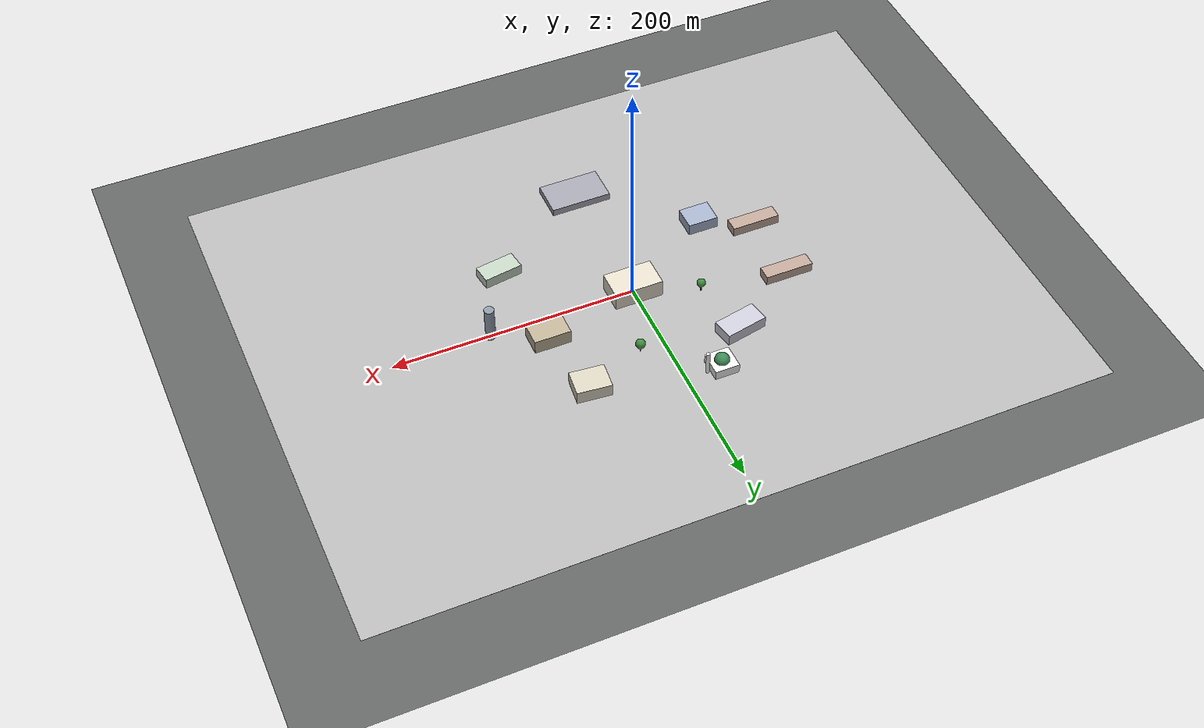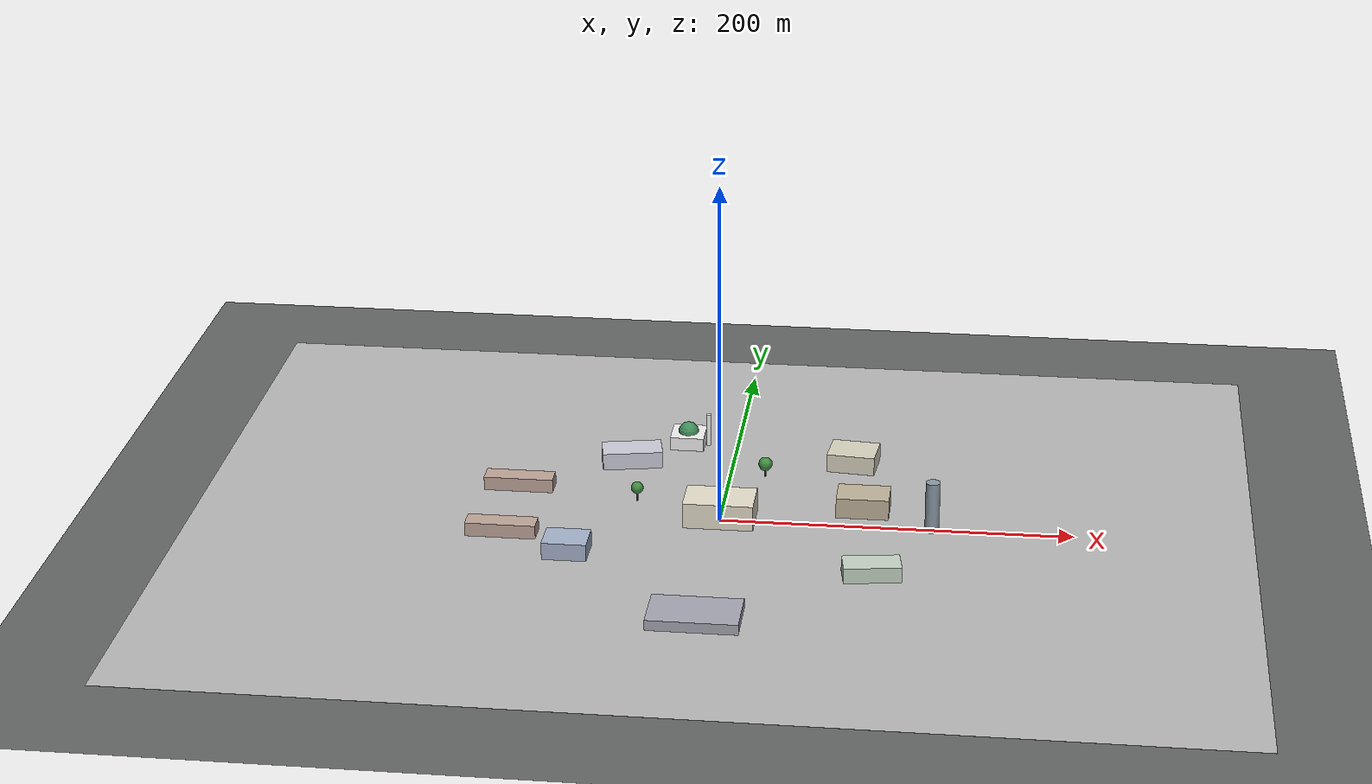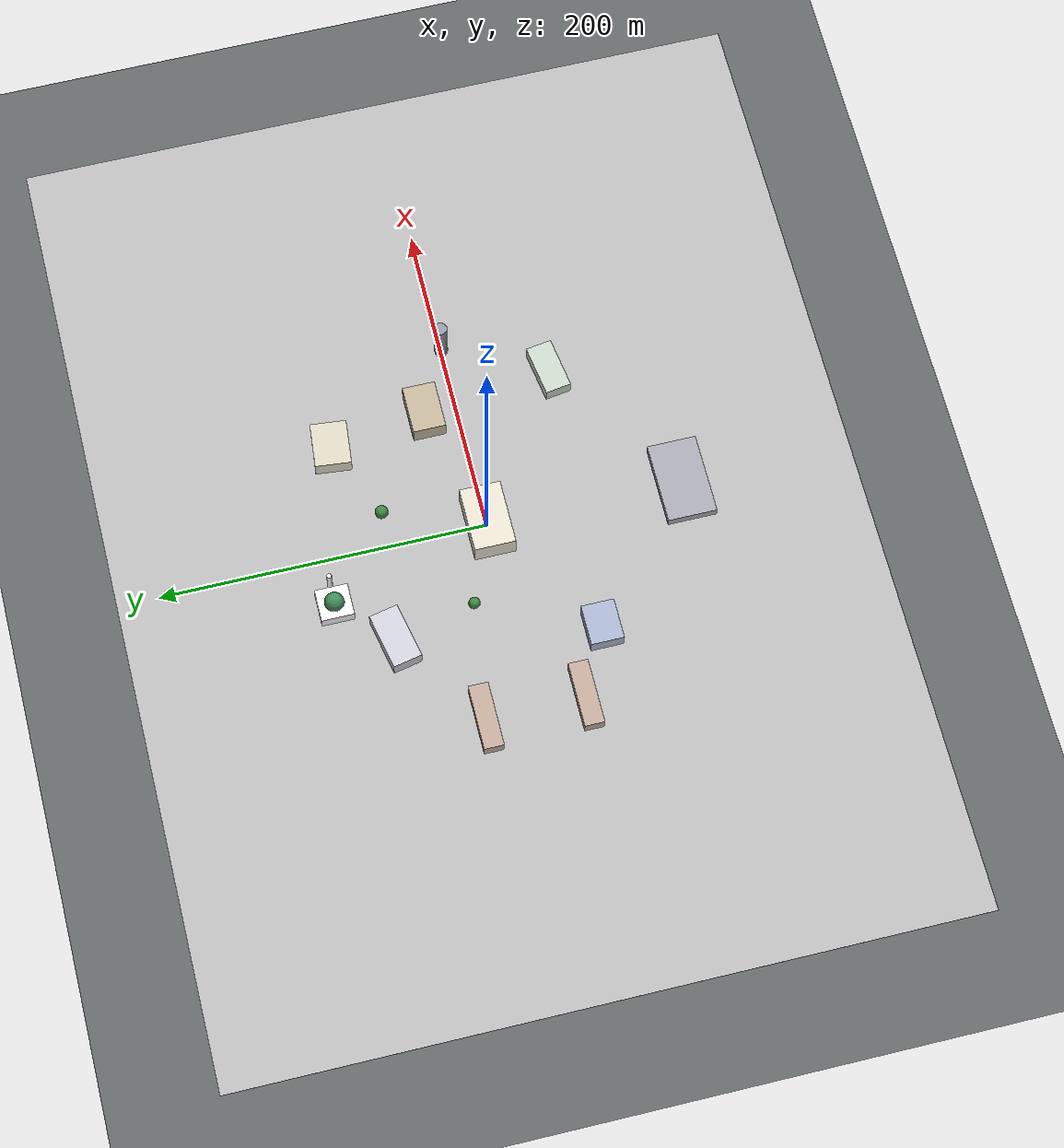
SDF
<?xml version="1.0" ?>
<sdf version="1.9">
  <world name="qau_campus_world">

    <!-- Spherical coordinates for QAU Campus, Islamabad -->
    <spherical_coordinates>
      <surface_model>EARTH_WGS84</surface_model>
      <latitude_deg>33.7470</latitude_deg>
      <longitude_deg>73.1370</longitude_deg>
      <elevation>550</elevation>
      <heading_deg>0</heading_deg>
    </spherical_coordinates>

    <!-- Physics settings optimized for drone simulation -->
    <physics type="ode">
      <max_step_size>0.004</max_step_size>
      <real_time_factor>1.0</real_time_factor>
      <real_time_update_rate>250</real_time_update_rate>
    </physics>

    <!-- Scene lighting for good visual feature detection -->
    <scene>
      <ambient>0.6 0.6 0.6 1</ambient>
      <background>0.6 0.75 0.9 1</background>
      <shadows>true</shadows>
    </scene>

    <!-- Sun light source (positioned for Islamabad latitude) -->
    <light type="directional" name="sun">
      <cast_shadows>true</cast_shadows>
      <pose>0 0 100 0 0 0</pose>
      <diffuse>0.9 0.9 0.85 1</diffuse>
      <specular>0.3 0.3 0.3 1</specular>
      <direction>-0.4 0.3 -0.9</direction>
    </light>

    <!-- Ground plane representing QAU campus grounds: real satellite-textured,
         portable model://qau_ground_plane (simulation/models/qau_ground_plane/). -->
    <include>
      <uri>model://qau_ground_plane</uri>
      <pose>0 0 0 0 0 0</pose>
    </include>

    <!-- QAU CAMPUS LANDMARKS - Distinctive buildings -->

    <!-- QAU Main Administration Building (Central) -->
    <model name="qau_admin_building">
      <static>true</static>
      <pose>0 0 7.5 0 0 0</pose>
      <link name="link">
        <collision name="collision">
          <geometry>
            <box><size>40 25 15</size></box>
          </geometry>
        </collision>
        <visual name="visual">
          <geometry>
            <box><size>40 25 15</size></box>
          </geometry>
          <material>
            <ambient>0.85 0.82 0.75 1</ambient>
            <diffuse>0.9 0.87 0.8 1</diffuse>
          </material>
        </visual>
      </link>
    </model>

    <!-- QAU Library Building (East of Admin) -->
    <model name="qau_library">
      <static>true</static>
      <pose>80 20 6 0 0 0</pose>
      <link name="link">
        <collision name="collision">
          <geometry>
            <box><size>30 20 12</size></box>
          </geometry>
        </collision>
        <visual name="visual">
          <geometry>
            <box><size>30 20 12</size></box>
          </geometry>
          <material>
            <ambient>0.7 0.65 0.55 1</ambient>
            <diffuse>0.75 0.7 0.6 1</diffuse>
          </material>
        </visual>
      </link>
    </model>

    <!-- Physics Department Building (Northwest) -->
    <model name="qau_physics_dept">
      <static>true</static>
      <pose>-60 70 5 0 0 0.2</pose>
      <link name="link">
        <collision name="collision">
          <geometry>
            <box><size>35 18 10</size></box>
          </geometry>
        </collision>
        <visual name="visual">
          <geometry>
            <box><size>35 18 10</size></box>
          </geometry>
          <material>
            <ambient>0.75 0.75 0.8 1</ambient>
            <diffuse>0.8 0.8 0.85 1</diffuse>
          </material>
        </visual>
      </link>
    </model>

    <!-- Chemistry Department Building (Northeast) -->
    <model name="qau_chemistry_dept">
      <static>true</static>
      <pose>70 80 5.5 0 0 -0.1</pose>
      <link name="link">
        <collision name="collision">
          <geometry>
            <box><size>28 22 11</size></box>
          </geometry>
        </collision>
        <visual name="visual">
          <geometry>
            <box><size>28 22 11</size></box>
          </geometry>
          <material>
            <ambient>0.8 0.78 0.7 1</ambient>
            <diffuse>0.85 0.83 0.75 1</diffuse>
          </material>
        </visual>
      </link>
    </model>

    <!-- Biology Department Building (Southeast) -->
    <model name="qau_biology_dept">
      <static>true</static>
      <pose>90 -60 4.5 0 0 0.15</pose>
      <link name="link">
        <collision name="collision">
          <geometry>
            <box><size>32 16 9</size></box>
          </geometry>
        </collision>
        <visual name="visual">
          <geometry>
            <box><size>32 16 9</size></box>
          </geometry>
          <material>
            <ambient>0.72 0.78 0.72 1</ambient>
            <diffuse>0.77 0.83 0.77 1</diffuse>
          </material>
        </visual>
      </link>
    </model>

    <!-- Computer Science Department (Southwest) -->
    <model name="qau_cs_dept">
      <static>true</static>
      <pose>-80 -50 5 0 0 0</pose>
      <link name="link">
        <collision name="collision">
          <geometry>
            <box><size>25 20 10</size></box>
          </geometry>
        </collision>
        <visual name="visual">
          <geometry>
            <box><size>25 20 10</size></box>
          </geometry>
          <material>
            <ambient>0.6 0.65 0.75 1</ambient>
            <diffuse>0.65 0.7 0.8 1</diffuse>
          </material>
        </visual>
      </link>
    </model>

    <!-- QAU Mosque (Distinctive landmark with dome) -->
    <model name="qau_mosque">
      <static>true</static>
      <pose>-30 100 0 0 0 0</pose>
      <link name="base">
        <collision name="collision">
          <geometry>
            <box><size>20 20 8</size></box>
          </geometry>
        </collision>
        <visual name="visual">
          <pose>0 0 4 0 0 0</pose>
          <geometry>
            <box><size>20 20 8</size></box>
          </geometry>
          <material>
            <ambient>0.9 0.9 0.9 1</ambient>
            <diffuse>0.95 0.95 0.95 1</diffuse>
          </material>
        </visual>
      </link>
      <link name="dome">
        <pose>0 0 8 0 0 0</pose>
        <visual name="visual">
          <geometry>
            <sphere><radius>6</radius></sphere>
          </geometry>
          <material>
            <ambient>0.2 0.5 0.3 1</ambient>
            <diffuse>0.25 0.55 0.35 1</diffuse>
          </material>
        </visual>
      </link>
      <link name="minaret">
        <pose>12 0 10 0 0 0</pose>
        <visual name="visual">
          <geometry>
            <cylinder>
              <radius>1.5</radius>
              <length>20</length>
            </cylinder>
          </geometry>
          <material>
            <ambient>0.9 0.9 0.9 1</ambient>
            <diffuse>0.95 0.95 0.95 1</diffuse>
          </material>
        </visual>
      </link>
    </model>

    <!-- QAU Water Tower (Tall distinctive landmark) -->
    <model name="qau_water_tower">
      <static>true</static>
      <pose>120 0 15 0 0 0</pose>
      <link name="link">
        <collision name="collision">
          <geometry>
            <cylinder>
              <radius>4</radius>
              <length>30</length>
            </cylinder>
          </geometry>
        </collision>
        <visual name="visual">
          <geometry>
            <cylinder>
              <radius>4</radius>
              <length>30</length>
            </cylinder>
          </geometry>
          <material>
            <ambient>0.5 0.55 0.6 1</ambient>
            <diffuse>0.55 0.6 0.65 1</diffuse>
          </material>
        </visual>
      </link>
    </model>

    <!-- Student Hostels Area (West side) -->
    <model name="qau_hostel_block_1">
      <static>true</static>
      <pose>-120 30 4 0 0 0</pose>
      <link name="link">
        <collision name="collision">
          <geometry>
            <box><size>40 12 8</size></box>
          </geometry>
        </collision>
        <visual name="visual">
          <geometry>
            <box><size>40 12 8</size></box>
          </geometry>
          <material>
            <ambient>0.7 0.6 0.55 1</ambient>
            <diffuse>0.75 0.65 0.6 1</diffuse>
          </material>
        </visual>
      </link>
    </model>

    <model name="qau_hostel_block_2">
      <static>true</static>
      <pose>-120 -30 4 0 0 0</pose>
      <link name="link">
        <collision name="collision">
          <geometry>
            <box><size>40 12 8</size></box>
          </geometry>
        </collision>
        <visual name="visual">
          <geometry>
            <box><size>40 12 8</size></box>
          </geometry>
          <material>
            <ambient>0.7 0.6 0.55 1</ambient>
            <diffuse>0.75 0.65 0.6 1</diffuse>
          </material>
        </visual>
      </link>
    </model>

    <!-- Sports Complex (South) -->
    <model name="qau_sports_complex">
      <static>true</static>
      <pose>0 -120 3 0 0 0</pose>
      <link name="link">
        <collision name="collision">
          <geometry>
            <box><size>50 30 6</size></box>
          </geometry>
        </collision>
        <visual name="visual">
          <geometry>
            <box><size>50 30 6</size></box>
          </geometry>
          <material>
            <ambient>0.6 0.6 0.65 1</ambient>
            <diffuse>0.65 0.65 0.7 1</diffuse>
          </material>
        </visual>
      </link>
    </model>

    <!-- GROUND MARKERS - Visual reference patterns -->

    <!-- Helipad marker near Admin building -->
    <model name="helipad_marker">
      <static>true</static>
      <pose>30 -30 0.01 0 0 0</pose>
      <link name="link">
        <visual name="visual">
          <geometry>
            <cylinder>
              <radius>5</radius>
              <length>0.02</length>
            </cylinder>
          </geometry>
          <material>
            <ambient>0.9 0.9 0.2 1</ambient>
            <diffuse>0.95 0.95 0.3 1</diffuse>
          </material>
        </visual>
      </link>
    </model>

    <!-- Road markings / pathways -->
    <model name="main_road_ns">
      <static>true</static>
      <pose>40 0 0.005 0 0 0</pose>
      <link name="link">
        <visual name="visual">
          <geometry>
            <box><size>8 200 0.01</size></box>
          </geometry>
          <material>
            <ambient>0.3 0.3 0.3 1</ambient>
            <diffuse>0.35 0.35 0.35 1</diffuse>
          </material>
        </visual>
      </link>
    </model>

    <model name="main_road_ew">
      <static>true</static>
      <pose>0 40 0.005 0 0 0</pose>
      <link name="link">
        <visual name="visual">
          <geometry>
            <box><size>200 8 0.01</size></box>
          </geometry>
          <material>
            <ambient>0.3 0.3 0.3 1</ambient>
            <diffuse>0.35 0.35 0.35 1</diffuse>
          </material>
        </visual>
      </link>
    </model>

    <!-- Parking areas with distinctive patterns -->
    <model name="parking_area_1">
      <static>true</static>
      <pose>-40 -20 0.005 0 0 0</pose>
      <link name="link">
        <visual name="visual">
          <geometry>
            <box><size>25 15 0.01</size></box>
          </geometry>
          <material>
            <ambient>0.4 0.4 0.45 1</ambient>
            <diffuse>0.45 0.45 0.5 1</diffuse>
          </material>
        </visual>
      </link>
    </model>

    <!-- Trees as visual landmarks (simplified as cylinders) -->
    <model name="tree_cluster_1">
      <static>true</static>
      <pose>20 60 3 0 0 0</pose>
      <link name="trunk">
        <visual name="visual">
          <geometry>
            <cylinder>
              <radius>0.5</radius>
              <length>6</length>
            </cylinder>
          </geometry>
          <material>
            <ambient>0.4 0.3 0.2 1</ambient>
            <diffuse>0.45 0.35 0.25 1</diffuse>
          </material>
        </visual>
      </link>
      <link name="canopy">
        <pose>0 0 5 0 0 0</pose>
        <visual name="visual">
          <geometry>
            <sphere><radius>4</radius></sphere>
          </geometry>
          <material>
            <ambient>0.2 0.5 0.2 1</ambient>
            <diffuse>0.25 0.55 0.25 1</diffuse>
          </material>
        </visual>
      </link>
    </model>

    <model name="tree_cluster_2">
      <static>true</static>
      <pose>-50 20 3 0 0 0</pose>
      <link name="trunk">
        <visual name="visual">
          <geometry>
            <cylinder>
              <radius>0.5</radius>
              <length>6</length>
            </cylinder>
          </geometry>
          <material>
            <ambient>0.4 0.3 0.2 1</ambient>
            <diffuse>0.45 0.35 0.25 1</diffuse>
          </material>
        </visual>
      </link>
      <link name="canopy">
        <pose>0 0 5 0 0 0</pose>
        <visual name="visual">
          <geometry>
            <sphere><radius>3.5</radius></sphere>
          </geometry>
          <material>
            <ambient>0.2 0.5 0.2 1</ambient>
            <diffuse>0.25 0.55 0.25 1</diffuse>
          </material>
        </visual>
      </link>
    </model>

  </world>
</sdf>

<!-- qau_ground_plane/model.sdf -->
<sdf version="1.7">
  <model name="qau_ground_plane">
    <static>true</static>
    <link name="link">
      <collision name="collision">
        <geometry>
          <plane>
            <normal>0 0 1</normal>
            <size>1000 1000</size>
          </plane>
        </geometry>
      </collision>

      <visual name="base">
        <geometry>
          <plane>
            <normal>0 0 1</normal>
            <size>1000 1000</size>
          </plane>
        </geometry>
        <material>
          <ambient>0.388 0.400 0.398 1</ambient>
          <diffuse>0.388 0.400 0.398 1</diffuse>
        </material>
      </visual>

      <visual name="satellite_map">
        <pose>0 0 0.02 0 0 0</pose>
        <geometry>
          <box>
            <size>600 450.6 0.04</size>
          </box>
        </geometry>
        <material>
          <script>
            <uri>model://qau_ground_plane/materials/scripts</uri>
            <uri>model://qau_ground_plane/materials/textures</uri>
            <name>QAU/Satellite</name>
          </script>
        </material>
      </visual>
    </link>
  </model>
</sdf>
